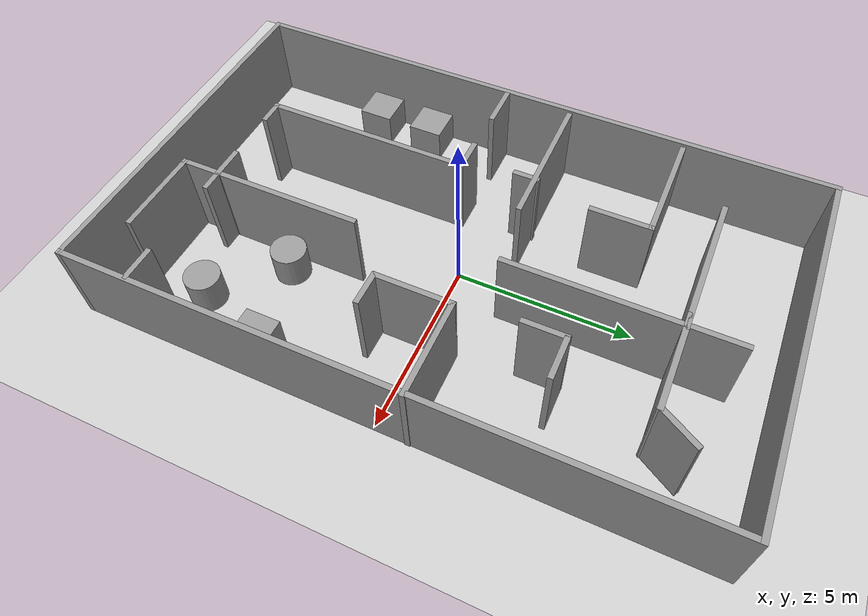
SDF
<sdf version="1.7">
 <world name="default">
  <light name="sun" type="directional">
   <pose>0 0 10 0 -0 0</pose>
   <diffuse>0.8 0.8 0.8 1</diffuse>
   <specular>0.2 0.2 0.2 1</specular>
   <attenuation>
    <range>1000</range>
    <constant>0.9</constant>
    <linear>0.01</linear>
    <quadratic>0.001</quadratic>
   </attenuation>
   <direction>-0.5 0.1 -0.9</direction>
   <spot><inner_angle>0</inner_angle><outer_angle>0</outer_angle><falloff>0</falloff></spot>
  </light>
  <model name="ground_plane">
   <static>1</static>
   <link name="link">
    <collision name="collision">
     <geometry><plane><normal>0 0 1</normal><size>100 100</size></plane></geometry>
     <surface>
      <contact><collide_bitmask>65535</collide_bitmask></contact>
      <friction><ode><mu>100</mu><mu2>50</mu2></ode></friction>
     </surface>
    </collision>
    <visual name="visual">
     <cast_shadows>0</cast_shadows>
     <geometry><plane><normal>0 0 1</normal><size>100 100</size></plane></geometry>
     <material>
      <script><uri>file://media/materials/scripts/gazebo.material</uri><name>Gazebo/Grey</name></script>
     </material>
    </visual>
   </link>
  </model>
  <gravity>0 0 -9.8</gravity>
  <magnetic_field>6e-06 2.3e-05 -4.2e-05</magnetic_field>
  <atmosphere type="adiabatic"/>
  <physics type="ode">
   <max_step_size>0.001</max_step_size>
   <real_time_factor>1</real_time_factor>
   <real_time_update_rate>1000</real_time_update_rate>
  </physics>
  <scene><ambient>0.4 0.4 0.4 1</ambient><background>0.7 0.7 0.7 1</background><shadows>1</shadows></scene>
  <spherical_coordinates>
   <surface_model>EARTH_WGS84</surface_model>
   <latitude_deg>0</latitude_deg>
   <longitude_deg>0</longitude_deg>
   <elevation>0</elevation>
   <heading_deg>0</heading_deg>
  </spherical_coordinates>
  <model name="world2">
   <pose>0.011529 0.079304 0 0 -0 0</pose>
   <link name="Wall_0">
    <collision name="Wall_0_Collision">
     <geometry><box><size>10.25 0.15 2.5</size></box></geometry>
     <pose>0 0 1.25 0 -0 0</pose>
    </collision>
    <visual name="Wall_0_Visual">
     <pose>0 0 1.25 0 -0 0</pose>
     <geometry><box><size>10.25 0.15 2.5</size></box></geometry>
     <material>
      <script><uri>file://media/materials/scripts/gazebo.material</uri><name>Gazebo/Grey</name></script>
      <ambient>1 1 1 1</ambient>
     </material>
     <meta><layer>0</layer></meta>
    </visual>
    <pose>-0.012287 8.675 0 0 -0 0</pose>
   </link>
   <link name="Wall_1">
    <collision name="Wall_1_Collision">
     <geometry><box><size>17.5 0.15 2.5</size></box></geometry>
     <pose>0 0 1.25 0 -0 0</pose>
    </collision>
    <visual name="Wall_1_Visual">
     <pose>0 0 1.25 0 -0 0</pose>
     <geometry><box><size>17.5 0.15 2.5</size></box></geometry>
     <material>
      <script><uri>file://media/materials/scripts/gazebo.material</uri><name>Gazebo/Grey</name></script>
      <ambient>1 1 1 1</ambient>
     </material>
     <meta><layer>0</layer></meta>
    </visual>
    <pose>5.03771 -0 0 0 -0 -1.5708</pose>
   </link>
   <link name="Wall_11">
    <collision name="Wall_11_Collision">
     <geometry><box><size>4 0.15 2.5</size></box></geometry>
     <pose>0 0 1.25 0 -0 0</pose>
    </collision>
    <visual name="Wall_11_Visual">
     <pose>0 0 1.25 0 -0 0</pose>
     <geometry><box><size>4 0.15 2.5</size></box></geometry>
     <material>
      <script><uri>file://media/materials/scripts/gazebo.material</uri><name>Gazebo/Grey</name></script>
      <ambient>1 1 1 1</ambient>
     </material>
     <meta><layer>0</layer></meta>
    </visual>
    <pose>-2.90751 1.2106 0 0 -0 0</pose>
   </link>
   <link name="Wall_13">
    <collision name="Wall_13_Collision">
     <geometry><box><size>0.75 0.15 2.5</size></box></geometry>
     <pose>0 0 1.25 0 -0 0</pose>
    </collision>
    <visual name="Wall_13_Visual">
     <pose>0 0 1.25 0 -0 0</pose>
     <geometry><box><size>0.75 0.15 2.5</size></box></geometry>
     <material>
      <script><uri>file://media/materials/scripts/gazebo.material</uri><name>Gazebo/Grey</name></script>
      <ambient>1 1 1 1</ambient>
     </material>
     <meta><layer>0</layer></meta>
    </visual>
    <pose>-2.10388 0.9641 0 0 -0 -1.5708</pose>
   </link>
   <link name="Wall_15">
    <collision name="Wall_15_Collision">
     <geometry><box><size>1.25 0.15 2.5</size></box></geometry>
     <pose>0 0 1.25 0 -0 0</pose>
    </collision>
    <visual name="Wall_15_Visual">
     <pose>0 0 1.25 0 -0 0</pose>
     <geometry><box><size>1.25 0.15 2.5</size></box></geometry>
     <material>
      <script><uri>file://media/materials/scripts/gazebo.material</uri><name>Gazebo/Grey</name></script>
      <ambient>1 1 1 1</ambient>
     </material>
     <meta><layer>0</layer></meta>
    </visual>
    <pose>2.77967 3.66662 0 0 -0 0</pose>
   </link>
   <link name="Wall_17">
    <collision name="Wall_17_Collision">
     <geometry><box><size>1.25 0.15 2.5</size></box></geometry>
     <pose>0 0 1.25 0 -0 0</pose>
    </collision>
    <visual name="Wall_17_Visual">
     <pose>0 0 1.25 0 -0 0</pose>
     <geometry><box><size>1.25 0.15 2.5</size></box></geometry>
     <material>
      <script><uri>file://media/materials/scripts/gazebo.material</uri><name>Gazebo/Grey</name></script>
      <ambient>1 1 1 1</ambient>
     </material>
     <meta><layer>0</layer></meta>
    </visual>
    <pose>2.22967 3.11662 0 0 -0 -1.5708</pose>
   </link>
   <link name="Wall_19">
    <collision name="Wall_19_Collision">
     <geometry><box><size>2.75 0.15 2.5</size></box></geometry>
     <pose>0 0 1.25 0 -0 0</pose>
    </collision>
    <visual name="Wall_19_Visual">
     <pose>0 0 1.25 0 -0 0</pose>
     <geometry><box><size>2.75 0.15 2.5</size></box></geometry>
     <material>
      <script><uri>file://media/materials/scripts/gazebo.material</uri><name>Gazebo/Grey</name></script>
      <ambient>1 1 1 1</ambient>
     </material>
     <meta><layer>0</layer></meta>
    </visual>
    <pose>3.76229 0.875181 0 0 -0 0</pose>
   </link>
   <link name="Wall_2">
    <collision name="Wall_2_Collision">
     <geometry><box><size>10.25 0.15 2.5</size></box></geometry>
     <pose>0 0 1.25 0 -0 0</pose>
    </collision>
    <visual name="Wall_2_Visual">
     <pose>0 0 1.25 0 -0 0</pose>
     <geometry><box><size>10.25 0.15 2.5</size></box></geometry>
     <material>
      <script><uri>file://media/materials/scripts/gazebo.material</uri><name>Gazebo/Grey</name></script>
      <ambient>1 1 1 1</ambient>
     </material>
     <meta><layer>0</layer></meta>
    </visual>
    <pose>-0.012287 -8.675 0 0 -0 3.14159</pose>
   </link>
   <link name="Wall_21">
    <collision name="Wall_21_Collision">
     <geometry><box><size>2.25 0.15 2.5</size></box></geometry>
     <pose>0 0 1.25 0 -0 0</pose>
    </collision>
    <visual name="Wall_21_Visual">
     <pose>0 0 1.25 0 -0 0</pose>
     <geometry><box><size>2.25 0.15 2.5</size></box></geometry>
     <material>
      <script><uri>file://media/materials/scripts/gazebo.material</uri><name>Gazebo/Grey</name></script>
      <ambient>1 1 1 1</ambient>
     </material>
     <meta><layer>0</layer></meta>
    </visual>
    <pose>2.46229 -0.174819 0 0 -0 -1.5708</pose>
   </link>
   <link name="Wall_22">
    <collision name="Wall_22_Collision">
     <geometry><box><size>1 0.15 2.5</size></box></geometry>
     <pose>0 0 1.25 0 -0 0</pose>
    </collision>
    <visual name="Wall_22_Visual">
     <pose>0 0 1.25 0 -0 0</pose>
     <geometry><box><size>1 0.15 2.5</size></box></geometry>
     <material>
      <script><uri>file://media/materials/scripts/gazebo.material</uri><name>Gazebo/Grey</name></script>
      <ambient>1 1 1 1</ambient>
     </material>
     <meta><layer>0</layer></meta>
    </visual>
    <pose>2.88729 -1.22482 0 0 -0 0</pose>
   </link>
   <link name="Wall_24">
    <collision name="Wall_24_Collision">
     <geometry><box><size>1.25 0.15 2.5</size></box></geometry>
     <pose>0 0 1.25 0 -0 0</pose>
    </collision>
    <visual name="Wall_24_Visual">
     <pose>0 0 1.25 0 -0 0</pose>
     <geometry><box><size>1.25 0.15 2.5</size></box></geometry>
     <material>
      <script><uri>file://media/materials/scripts/gazebo.material</uri><name>Gazebo/Grey</name></script>
      <ambient>1 1 1 1</ambient>
     </material>
     <meta><layer>0</layer></meta>
    </visual>
    <pose>-4.37748 -0.747979 0 0 -0 0</pose>
   </link>
   <link name="Wall_26">
    <collision name="Wall_26_Collision">
     <geometry><box><size>1 0.15 2.5</size></box></geometry>
     <pose>0 0 1.25 0 -0 0</pose>
    </collision>
    <visual name="Wall_26_Visual">
     <pose>0 0 1.25 0 -0 0</pose>
     <geometry><box><size>1 0.15 2.5</size></box></geometry>
     <material>
      <script><uri>file://media/materials/scripts/gazebo.material</uri><name>Gazebo/Grey</name></script>
      <ambient>1 1 1 1</ambient>
     </material>
     <meta><layer>0</layer></meta>
    </visual>
    <pose>-2.18068 -0.783157 0 0 -0 0</pose>
   </link>
   <link name="Wall_27">
    <collision name="Wall_27_Collision">
     <geometry><box><size>6 0.15 2.5</size></box></geometry>
     <pose>0 0 1.25 0 -0 0</pose>
    </collision>
    <visual name="Wall_27_Visual">
     <pose>0 0 1.25 0 -0 0</pose>
     <geometry><box><size>6 0.15 2.5</size></box></geometry>
     <material>
      <script><uri>file://media/materials/scripts/gazebo.material</uri><name>Gazebo/Grey</name></script>
      <ambient>1 1 1 1</ambient>
     </material>
     <meta><layer>0</layer></meta>
    </visual>
    <pose>-1.75568 -3.70816 0 0 -0 -1.5708</pose>
   </link>
   <link name="Wall_28">
    <collision name="Wall_28_Collision">
     <geometry><box><size>0.75 0.15 2.5</size></box></geometry>
     <pose>0 0 1.25 0 -0 0</pose>
    </collision>
    <visual name="Wall_28_Visual">
     <pose>0 0 1.25 0 -0 0</pose>
     <geometry><box><size>0.75 0.15 2.5</size></box></geometry>
     <material>
      <script><uri>file://media/materials/scripts/gazebo.material</uri><name>Gazebo/Grey</name></script>
      <ambient>1 1 1 1</ambient>
     </material>
     <meta><layer>0</layer></meta>
    </visual>
    <pose>-1.45568 -6.63316 0 0 -0 0</pose>
   </link>
   <link name="Wall_3">
    <collision name="Wall_3_Collision">
     <geometry><box><size>17.5 0.15 2.5</size></box></geometry>
     <pose>0 0 1.25 0 -0 0</pose>
    </collision>
    <visual name="Wall_3_Visual">
     <pose>0 0 1.25 0 -0 0</pose>
     <geometry><box><size>17.5 0.15 2.5</size></box></geometry>
     <material>
      <script><uri>file://media/materials/scripts/gazebo.material</uri><name>Gazebo/Grey</name></script>
      <ambient>1 1 1 1</ambient>
     </material>
     <meta><layer>0</layer></meta>
    </visual>
    <pose>-5.06229 -0 0 0 -0 1.5708</pose>
   </link>
   <link name="Wall_30">
    <collision name="Wall_30_Collision">
     <geometry><box><size>1.5 0.15 2.5</size></box></geometry>
     <pose>0 0 1.25 0 -0 0</pose>
    </collision>
    <visual name="Wall_30_Visual">
     <pose>0 0 1.25 0 -0 0</pose>
     <geometry><box><size>1.5 0.15 2.5</size></box></geometry>
     <material>
      <script><uri>file://media/materials/scripts/gazebo.material</uri><name>Gazebo/Grey</name></script>
      <ambient>1 1 1 1</ambient>
     </material>
     <meta><layer>0</layer></meta>
    </visual>
    <pose>1.04335 -6.6371 0 0 -0 0</pose>
   </link>
   <link name="Wall_32">
    <collision name="Wall_32_Collision">
     <geometry><box><size>4.25 0.15 2.5</size></box></geometry>
     <pose>0 0 1.25 0 -0 0</pose>
    </collision>
    <visual name="Wall_32_Visual">
     <pose>0 0 1.25 0 -0 0</pose>
     <geometry><box><size>4.25 0.15 2.5</size></box></geometry>
     <material>
      <script><uri>file://media/materials/scripts/gazebo.material</uri><name>Gazebo/Grey</name></script>
      <ambient>1 1 1 1</ambient>
     </material>
     <meta><layer>0</layer></meta>
    </visual>
    <pose>1.17746 -4.56063 0 0 -0 -1.5708</pose>
   </link>
   <link name="Wall_34">
    <collision name="Wall_34_Collision">
     <geometry><box><size>1 0.15 2.5</size></box></geometry>
     <pose>0 0 1.25 0 -0 0</pose>
    </collision>
    <visual name="Wall_34_Visual">
     <pose>0 0 1.25 0 -0 0</pose>
     <geometry><box><size>1 0.15 2.5</size></box></geometry>
     <material>
      <script><uri>file://media/materials/scripts/gazebo.material</uri><name>Gazebo/Grey</name></script>
      <ambient>1 1 1 1</ambient>
     </material>
     <meta><layer>0</layer></meta>
    </visual>
    <pose>4.55572 -6.67755 0 0 -0 0</pose>
   </link>
   <link name="Wall_36">
    <collision name="Wall_36_Collision">
     <geometry><box><size>1.25 0.15 2.5</size></box></geometry>
     <pose>0 0 1.25 0 -0 0</pose>
    </collision>
    <visual name="Wall_36_Visual">
     <pose>0 0 1.25 0 -0 0</pose>
     <geometry><box><size>1.25 0.15 2.5</size></box></geometry>
     <material>
      <script><uri>file://media/materials/scripts/gazebo.material</uri><name>Gazebo/Grey</name></script>
      <ambient>1 1 1 1</ambient>
     </material>
     <meta><layer>0</layer></meta>
    </visual>
    <pose>1.17746 -7.16063 0 0 -0 -1.5708</pose>
   </link>
   <link name="Wall_37">
    <collision name="Wall_37_Collision">
     <geometry><box><size>2.5 0.15 2.5</size></box></geometry>
     <pose>0 0 1.25 0 -0 0</pose>
    </collision>
    <visual name="Wall_37_Visual">
     <pose>0 0 1.25 0 -0 0</pose>
     <geometry><box><size>2.5 0.15 2.5</size></box></geometry>
     <material>
      <script><uri>file://media/materials/scripts/gazebo.material</uri><name>Gazebo/Grey</name></script>
      <ambient>1 1 1 1</ambient>
     </material>
     <meta><layer>0</layer></meta>
    </visual>
    <pose>2.35247 -7.71063 0 0 -0 0</pose>
   </link>
   <link name="Wall_40">
    <collision name="Wall_40_Collision">
     <geometry><box><size>3.25 0.15 2.5</size></box></geometry>
     <pose>0 0 1.25 0 -0 0</pose>
    </collision>
    <visual name="Wall_40_Visual">
     <pose>0 0 1.25 0 -0 0</pose>
     <geometry><box><size>3.25 0.15 2.5</size></box></geometry>
     <material>
      <script><uri>file://media/materials/scripts/gazebo.material</uri><name>Gazebo/Grey</name></script>
      <ambient>1 1 1 1</ambient>
     </material>
     <meta><layer>0</layer></meta>
    </visual>
    <pose>-3.25996 4.52864 0 0 -0 0</pose>
   </link>
   <link name="Wall_41">
    <collision name="Wall_41_Collision">
     <geometry><box><size>1.75 0.15 2.5</size></box></geometry>
     <pose>0 0 1.25 0 -0 0</pose>
    </collision>
    <visual name="Wall_41_Visual">
     <pose>0 0 1.25 0 -0 0</pose>
     <geometry><box><size>1.75 0.15 2.5</size></box></geometry>
     <material>
      <script><uri>file://media/materials/scripts/gazebo.material</uri><name>Gazebo/Grey</name></script>
      <ambient>1 1 1 1</ambient>
     </material>
     <meta><layer>0</layer></meta>
    </visual>
    <pose>-1.70996 3.72864 0 0 -0 -1.5708</pose>
   </link>
   <link name="Wall_43">
    <collision name="Wall_43_Collision">
     <geometry><box><size>2.75 0.15 2.5</size></box></geometry>
     <pose>0 0 1.25 0 -0 0</pose>
    </collision>
    <visual name="Wall_43_Visual">
     <pose>0 0 1.25 0 -0 0</pose>
     <geometry><box><size>2.75 0.15 2.5</size></box></geometry>
     <material>
      <script><uri>file://media/materials/scripts/gazebo.material</uri><name>Gazebo/Grey</name></script>
      <ambient>1 1 1 1</ambient>
     </material>
     <meta><layer>0</layer></meta>
    </visual>
    <pose>1.77957 6.07932 0 0 -0 0</pose>
   </link>
   <link name="Wall_44">
    <collision name="Wall_44_Collision">
     <geometry><box><size>1.25 0.15 2.5</size></box></geometry>
     <pose>0 0 1.25 0 -0 0</pose>
    </collision>
    <visual name="Wall_44_Visual">
     <pose>0 0 1.25 0 -0 0</pose>
     <geometry><box><size>1.25 0.15 2.5</size></box></geometry>
     <material>
      <script><uri>file://media/materials/scripts/gazebo.material</uri><name>Gazebo/Grey</name></script>
      <ambient>1 1 1 1</ambient>
     </material>
     <meta><layer>0</layer></meta>
    </visual>
    <pose>3.35457 6.55564 0 0 -0 1.0472</pose>
   </link>
   <link name="Wall_5">
    <collision name="Wall_5_Collision">
     <geometry><box><size>6.25 0.15 2.5</size></box></geometry>
     <pose>0 0 1.25 0 -0 0</pose>
    </collision>
    <visual name="Wall_5_Visual">
     <pose>0 0 1.25 0 -0 0</pose>
     <geometry><box><size>6.25 0.15 2.5</size></box></geometry>
     <material>
      <script><uri>file://media/materials/scripts/gazebo.material</uri><name>Gazebo/Grey</name></script>
      <ambient>1 1 1 1</ambient>
     </material>
     <meta><layer>0</layer></meta>
    </visual>
    <pose>0.785253 4.47389 0 0 -0 -1.5708</pose>
   </link>
   <link name="Wall_7">
    <collision name="Wall_7_Collision">
     <geometry><box><size>3.75 0.15 2.5</size></box></geometry>
     <pose>0 0 1.25 0 -0 0</pose>
    </collision>
    <visual name="Wall_7_Visual">
     <pose>0 0 1.25 0 -0 0</pose>
     <geometry><box><size>3.75 0.15 2.5</size></box></geometry>
     <material>
      <script><uri>file://media/materials/scripts/gazebo.material</uri><name>Gazebo/Grey</name></script>
      <ambient>1 1 1 1</ambient>
     </material>
     <meta><layer>0</layer></meta>
    </visual>
    <pose>-1.32043 6.07932 0 0 -0 0</pose>
   </link>
   <link name="Wall_9">
    <collision name="Wall_9_Collision">
     <geometry><box><size>0.5 0.15 2.5</size></box></geometry>
     <pose>0 0 1.25 0 -0 0</pose>
    </collision>
    <visual name="Wall_9_Visual">
     <pose>0 0 1.25 0 -0 0</pose>
     <geometry><box><size>0.5 0.15 2.5</size></box></geometry>
     <material>
      <script><uri>file://media/materials/scripts/gazebo.material</uri><name>Gazebo/Grey</name></script>
      <ambient>1 1 1 1</ambient>
     </material>
     <meta><layer>0</layer></meta>
    </visual>
    <pose>0.654571 6.07932 0 0 -0 0</pose>
   </link>
   <static>1</static>
  </model>
  <model name="unit_box">
   <pose>-4.43216 -2.93666 0.5 0 -0 0</pose>
   <link name="link">
    <inertial>
     <mass>1</mass>
     <inertia>
      <ixx>0.166667</ixx>
      <ixy>0</ixy>
      <ixz>0</ixz>
      <iyy>0.166667</iyy>
      <iyz>0</iyz>
      <izz>0.166667</izz>
     </inertia>
    </inertial>
    <collision name="collision"><geometry><box><size>1 1 1</size></box></geometry></collision>
    <visual name="visual">
     <geometry><box><size>1 1 1</size></box></geometry>
     <material>
      <script><name>Gazebo/Grey</name><uri>file://media/materials/scripts/gazebo.material</uri></script>
     </material>
    </visual>
   </link>
  </model>
  <model name="unit_box_0">
   <pose>-4.45121 -4.65272 0.5 0 -0 0</pose>
   <link name="link">
    <inertial>
     <mass>1</mass>
     <inertia>
      <ixx>0.166667</ixx>
      <ixy>0</ixy>
      <ixz>0</ixz>
      <iyy>0.166667</iyy>
      <iyz>0</iyz>
      <izz>0.166667</izz>
     </inertia>
    </inertial>
    <collision name="collision"><geometry><box><size>1 1 1</size></box></geometry></collision>
    <visual name="visual">
     <geometry><box><size>1 1 1</size></box></geometry>
     <material>
      <script><name>Gazebo/Grey</name><uri>file://media/materials/scripts/gazebo.material</uri></script>
     </material>
    </visual>
   </link>
  </model>
  <model name="unit_cylinder">
   <pose>-2.42442 -5.89515 0.5 0 -0 0</pose>
   <link name="link">
    <inertial>
     <mass>1</mass>
     <inertia><ixx>0.145833</ixx><ixy>0</ixy><ixz>0</ixz><iyy>0.145833</iyy><iyz>0</iyz><izz>0.125</izz></inertia>
    </inertial>
    <collision name="collision">
     <geometry><cylinder><radius>0.5</radius><length>1</length></cylinder></geometry>
    </collision>
    <visual name="visual">
     <geometry><cylinder><radius>0.5</radius><length>1</length></cylinder></geometry>
     <material>
      <script><name>Gazebo/Grey</name><uri>file://media/materials/scripts/gazebo.material</uri></script>
     </material>
    </visual>
   </link>
  </model>
  <model name="unit_box_1">
   <pose>4.35409 -3.74824 0.5 0 -0 0</pose>
   <link name="link">
    <inertial>
     <mass>1</mass>
     <inertia>
      <ixx>0.166667</ixx>
      <ixy>0</ixy>
      <ixz>0</ixz>
      <iyy>0.166667</iyy>
      <iyz>0</iyz>
      <izz>0.166667</izz>
     </inertia>
    </inertial>
    <collision name="collision"><geometry><box><size>1 1 1</size></box></geometry></collision>
    <visual name="visual">
     <geometry><box><size>1 1 1</size></box></geometry>
     <material>
      <script><name>Gazebo/Grey</name><uri>file://media/materials/scripts/gazebo.material</uri></script>
     </material>
    </visual>
   </link>
  </model>
  <model name="unit_cylinder_0">
   <pose>1.75118 -4.30945 0.5 0 -0 0</pose>
   <link name="link">
    <inertial>
     <mass>1</mass>
     <inertia><ixx>0.145833</ixx><ixy>0</ixy><ixz>0</ixz><iyy>0.145833</iyy><iyz>0</iyz><izz>0.125</izz></inertia>
    </inertial>
    <collision name="collision">
     <geometry><cylinder><radius>0.5</radius><length>1</length></cylinder></geometry>
    </collision>
    <visual name="visual">
     <geometry><cylinder><radius>0.5</radius><length>1</length></cylinder></geometry>
     <material>
      <script><name>Gazebo/Grey</name><uri>file://media/materials/scripts/gazebo.material</uri></script>
     </material>
    </visual>
   </link>
  </model>
  <model name="unit_cylinder_1">
   <pose>3.44512 -5.94214 0.5 0 -0 0</pose>
   <link name="link">
    <inertial>
     <mass>1</mass>
     <inertia><ixx>0.145833</ixx><ixy>0</ixy><ixz>0</ixz><iyy>0.145833</iyy><iyz>0</iyz><izz>0.125</izz></inertia>
    </inertial>
    <collision name="collision">
     <geometry><cylinder><radius>0.5</radius><length>1</length></cylinder></geometry>
    </collision>
    <visual name="visual">
     <geometry><cylinder><radius>0.5</radius><length>1</length></cylinder></geometry>
     <material>
      <script><name>Gazebo/Grey</name><uri>file://media/materials/scripts/gazebo.material</uri></script>
     </material>
    </visual>
   </link>
  </model>
 </world>
</sdf>
